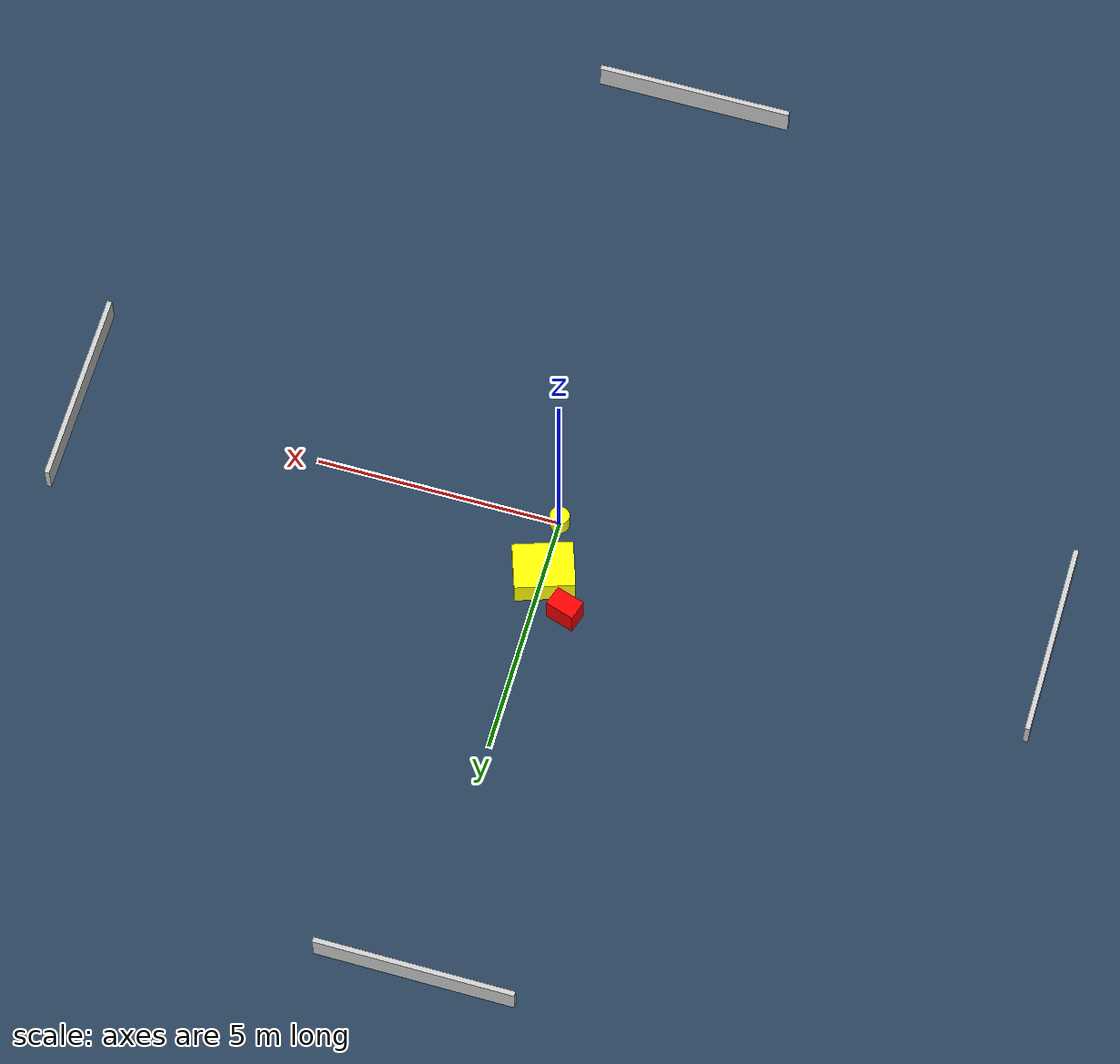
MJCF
<?xml version="1.0" ?>
<mujoco model="generated_environment">
  <option timestep="0.01" integrator="RK4" cone="elliptic"/>
  <default>
    <geom density="1"/>
  </default>
  <asset>
    <texture builtin="gradient" height="3072" name="skybox" rgb1="0.3 0.5 0.7" rgb2="0 0 0" type="skybox" width="512"/>
    <texture builtin="checker" height="300" name="groundplane" rgb1="0.2 0.3 0.4" rgb2="0.1 0.2 0.3" type="2d" width="300"/>
    <material name="groundplane" reflectance="0.2" texrepeat="5 5" texture="groundplane"/>
  </asset>
  <worldbody>
    <light dir="0 0 -1" directional="true" pos="0 0 1.5"/>
    <geom condim="3" friction="0.5 0.005 0.001" material="groundplane" name="floor" pos="0 0 0" size="0 0 0.05" type="plane"/>
    <body name="walls">
      <geom name="wall_1" condim="4" pos="-10.0 0.0 0.3" rgba="0.800000011920929 0.800000011920929 0.800000011920929 1.0" size="0.05 2.0 0.3" type="box"/>
      <geom name="wall_2" condim="4" pos="10.0 0.0 0.3" rgba="0.800000011920929 0.800000011920929 0.800000011920929 1.0" size="0.05 2.0 0.3" type="box"/>
      <geom name="wall_3" condim="4" pos="0.0 -10.0 0.3" rgba="0.800000011920929 0.800000011920929 0.800000011920929 1.0" size="2.0 0.05 0.3" type="box"/>
      <geom name="wall_4" condim="4" pos="0.0 10.0 0.3" rgba="0.800000011920929 0.800000011920929 0.800000011920929 1.0" size="2.0 0.05 0.3" type="box"/>
    </body>
    <body name="robot">
      <joint name="joint_x" type="slide" pos="0 0 0" axis="1 0 0"/>
      <joint name="joint_y" type="slide" pos="0 0 0" axis="0 1 0"/>
      <geom name="robot" type="cylinder" pos="0.0 0.0 0.2" size="0.2 0.2 0.0" mass="5.0" friction="1.0 0.005 0.0001" condim="4" rgba="1.0 1.0 0.0 1.0"/>
    </body>
    <body name="obstacle_1_movable">
      <geom name="obstacle_1_movable" condim="4" pos="-0.020021577362665043 1.210921567235702 0.3" euler="0 0 18.96686308118919" friction="0.0 0.005 0.001" rgba="1.0 1.0 0.0 1.0" size="0.6061210654275204 0.47565884898165856 0.3" type="box" mass="0.1"/>
      <joint type="free"/>
    </body>
    <body name="obstacle_2_static">
      <geom name="obstacle_2_static" condim="4" pos="-0.6508499569274001 1.8903708258635359 0.3" euler="0 0 162.43687464176242" friction="0.0 0.005 0.001" rgba="1.0 0.0 0.0 1.0" size="0.3008118287565341 0.2041991502452713 0.3" type="box"/>
    </body>
  </worldbody>
  <actuator>
    <motor name="actuator_x" joint="joint_x" gear="1" ctrlrange="-1 1"/>
    <motor name="actuator_y" joint="joint_y" gear="1" ctrlrange="-1 1"/>
  </actuator>
</mujoco>
